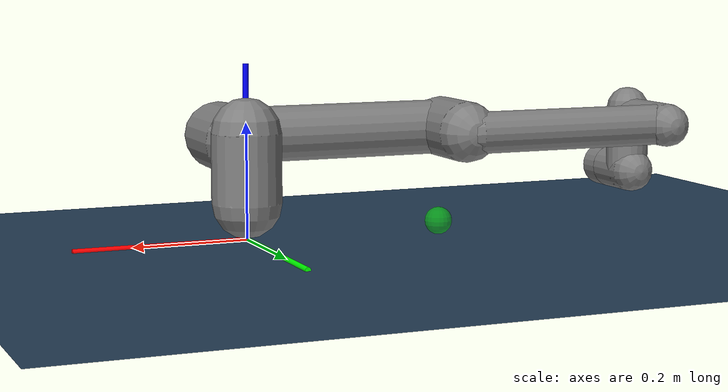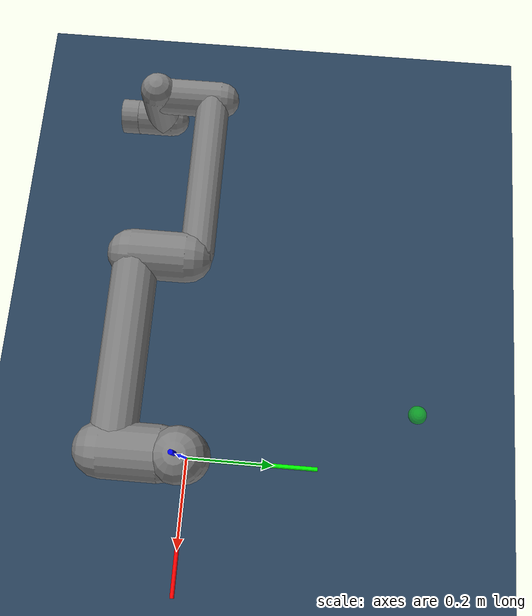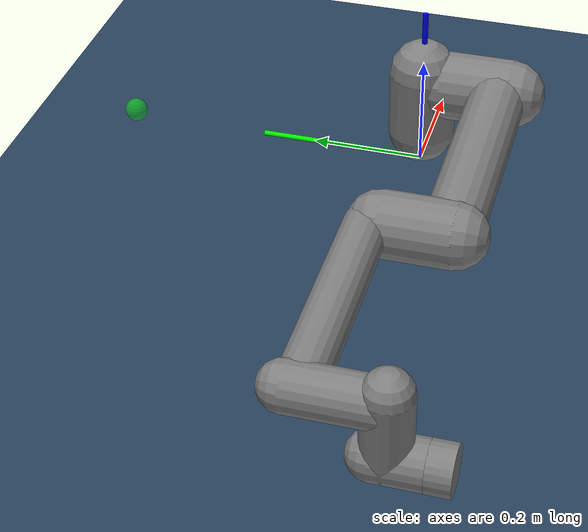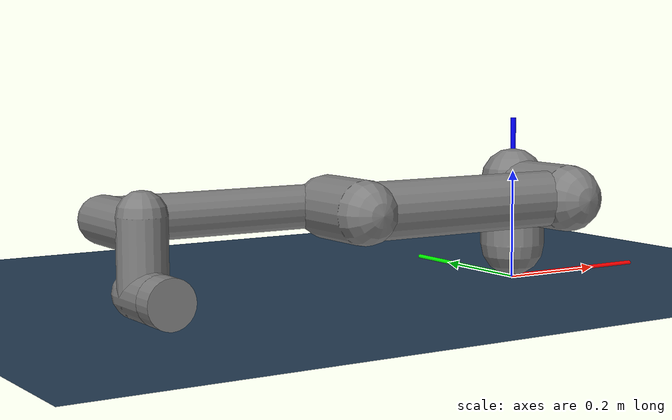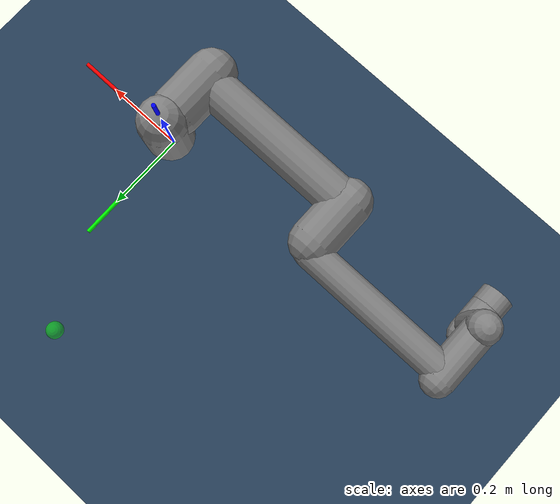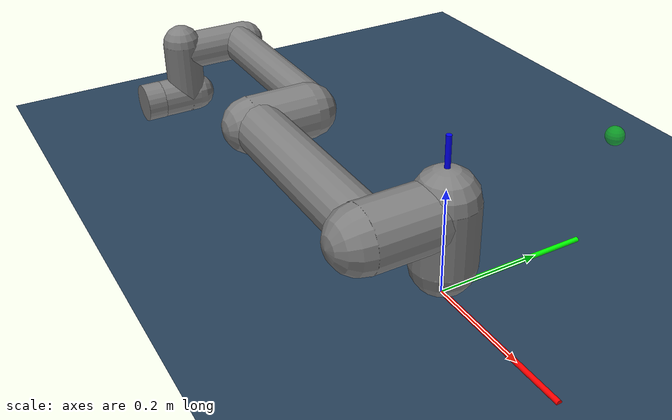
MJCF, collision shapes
<mujoco model="ur5e scene">
  <compiler angle="radian" meshdir="assets/"/>
  <option integrator="implicitfast"/>
  <size nkey="1"/>
  <visual>
    <global azimuth="120" elevation="-20"/>
    <headlight diffuse="0.6 0.6 0.6" specular="0 0 0"/>
    <rgba haze="0.15 0.25 0.35 1"/>
  </visual>
  <statistic extent="0.8" center="0.3 0 0.4"/>
  <default class="main">
    <default class="ur5e">
      <material shininess="0.25"/>
      <joint range="-6.28319 6.28319" armature="0.1"/>
      <site size="0.001 0.005 0.005" group="4" rgba="0.5 0.5 0.5 0.3"/>
      <general ctrlrange="-6.2831 6.2831" forcerange="-150 150" biastype="affine" gainprm="2000" biasprm="0 -2000 -400"/>
      <default class="size3">
        <default class="size3_limited">
          <joint range="-3.1415 3.1415"/>
          <general ctrlrange="-3.1415 3.1415"/>
        </default>
      </default>
      <default class="size1">
        <general forcerange="-28 28" gainprm="500" biasprm="0 -500 -100"/>
      </default>
      <default class="visual">
        <geom type="mesh" contype="0" conaffinity="0" group="2"/>
      </default>
      <default class="collision">
        <geom type="capsule" group="3"/>
        <default class="eef_collision">
          <geom type="cylinder"/>
        </default>
      </default>
    </default>
  </default>
  <asset>
    <texture type="skybox" builtin="gradient" rgb1="0.3 0.5 0.7" rgb2="0 0 0" width="512" height="3072"/>
    <texture type="2d" name="groundplane" builtin="checker" mark="edge" rgb1="0.2 0.3 0.4" rgb2="0.1 0.2 0.3" markrgb="0.8 0.8 0.8" width="300" height="300"/>
    <material name="black" class="ur5e" rgba="0.033 0.033 0.033 1"/>
    <material name="jointgray" class="ur5e" rgba="0.278 0.278 0.278 1"/>
    <material name="linkgray" class="ur5e" rgba="0.82 0.82 0.82 1"/>
    <material name="urblue" class="ur5e" rgba="0.49 0.678 0.8 1"/>
    <material name="groundplane" texture="groundplane" texuniform="true" texrepeat="5 5" reflectance="0.2"/>
    <mesh name="base_0" file="base_0.obj"/>
    <mesh name="base_1" file="base_1.obj"/>
    <mesh name="shoulder_0" file="shoulder_0.obj"/>
    <mesh name="shoulder_1" file="shoulder_1.obj"/>
    <mesh name="shoulder_2" file="shoulder_2.obj"/>
    <mesh name="upperarm_0" file="upperarm_0.obj"/>
    <mesh name="upperarm_1" file="upperarm_1.obj"/>
    <mesh name="upperarm_2" file="upperarm_2.obj"/>
    <mesh name="upperarm_3" file="upperarm_3.obj"/>
    <mesh name="forearm_0" file="forearm_0.obj"/>
    <mesh name="forearm_1" file="forearm_1.obj"/>
    <mesh name="forearm_2" file="forearm_2.obj"/>
    <mesh name="forearm_3" file="forearm_3.obj"/>
    <mesh name="wrist1_0" file="wrist1_0.obj"/>
    <mesh name="wrist1_1" file="wrist1_1.obj"/>
    <mesh name="wrist1_2" file="wrist1_2.obj"/>
    <mesh name="wrist2_0" file="wrist2_0.obj"/>
    <mesh name="wrist2_1" file="wrist2_1.obj"/>
    <mesh name="wrist2_2" file="wrist2_2.obj"/>
    <mesh name="wrist3" file="wrist3.obj"/>
  </asset>
  <worldbody>
    <geom name="floor" size="0 0 0.05" type="plane" material="groundplane"/>
    <light name="spotlight" target="wrist_2_link" pos="0 -1 2" dir="0 0 -1" mode="targetbodycom"/>
    <light pos="0 0 1.5" dir="0 0 -1" directional="true"/>
    <body name="base" childclass="ur5e" quat="0 0 0 -1">
      <inertial pos="0 0 0" mass="4" diaginertia="0.00443333 0.00443333 0.0072"/>
      <geom class="visual" material="black" mesh="base_0"/>
      <geom class="visual" material="jointgray" mesh="base_1"/>
      <body name="shoulder_link" pos="0 0 0.163">
        <inertial pos="0 0 0" mass="3.7" diaginertia="0.0102675 0.0102675 0.00666"/>
        <joint name="shoulder_pan_joint" class="size3" pos="0 0 0" axis="0 0 1"/>
        <geom class="visual" material="urblue" mesh="shoulder_0"/>
        <geom class="visual" material="black" mesh="shoulder_1"/>
        <geom class="visual" material="jointgray" mesh="shoulder_2"/>
        <geom class="collision" size="0.06 0.06" pos="0 0 -0.04"/>
        <body name="upper_arm_link" pos="0 0.138 0" quat="0.707107 0 0.707107 0">
          <inertial pos="0 0 0.2125" mass="8.393" diaginertia="0.133886 0.133886 0.0151074"/>
          <joint name="shoulder_lift_joint" class="size3" pos="0 0 0" axis="0 1 0"/>
          <geom class="visual" material="linkgray" mesh="upperarm_0"/>
          <geom class="visual" material="black" mesh="upperarm_1"/>
          <geom class="visual" material="jointgray" mesh="upperarm_2"/>
          <geom class="visual" material="urblue" mesh="upperarm_3"/>
          <geom class="collision" size="0.06 0.06" pos="0 -0.04 0" quat="0.707107 0.707107 0 0"/>
          <geom class="collision" size="0.05 0.2" pos="0 0 0.2"/>
          <body name="forearm_link" pos="0 -0.131 0.425">
            <inertial pos="0 0 0.196" mass="2.275" diaginertia="0.0311796 0.0311796 0.004095"/>
            <joint name="elbow_joint" class="size3_limited" pos="0 0 0" axis="0 1 0"/>
            <geom class="visual" material="urblue" mesh="forearm_0"/>
            <geom class="visual" material="linkgray" mesh="forearm_1"/>
            <geom class="visual" material="black" mesh="forearm_2"/>
            <geom class="visual" material="jointgray" mesh="forearm_3"/>
            <geom class="collision" size="0.055 0.06" pos="0 0.08 0" quat="0.707107 0.707107 0 0"/>
            <geom class="collision" size="0.038 0.19" pos="0 0 0.2"/>
            <body name="wrist_1_link" pos="0 0 0.392" quat="0.707107 0 0.707107 0">
              <inertial pos="0 0.127 0" mass="1.219" diaginertia="0.0025599 0.0025599 0.0021942"/>
              <joint name="wrist_1_joint" class="size1" pos="0 0 0" axis="0 1 0"/>
              <geom class="visual" material="black" mesh="wrist1_0"/>
              <geom class="visual" material="urblue" mesh="wrist1_1"/>
              <geom class="visual" material="jointgray" mesh="wrist1_2"/>
              <geom class="collision" size="0.04 0.07" pos="0 0.05 0" quat="0.707107 0.707107 0 0"/>
              <body name="wrist_2_link" pos="0 0.127 0">
                <inertial pos="0 0 0.1" mass="1.219" diaginertia="0.0025599 0.0025599 0.0021942"/>
                <joint name="wrist_2_joint" class="size1" pos="0 0 0" axis="0 0 1"/>
                <geom class="visual" material="black" mesh="wrist2_0"/>
                <geom class="visual" material="urblue" mesh="wrist2_1"/>
                <geom class="visual" material="jointgray" mesh="wrist2_2"/>
                <geom class="collision" size="0.04 0.06" pos="0 0 0.04"/>
                <geom class="collision" size="0.04 0.04" pos="0 0.02 0.1" quat="0.707107 0.707107 0 0"/>
                <body name="wrist_3_link" pos="0 0 0.1">
                  <inertial pos="0 0.0771683 0" quat="0.707107 0 0 0.707107" mass="0.1889" diaginertia="0.000132134 9.90863e-05 9.90863e-05"/>
                  <joint name="wrist_3_joint" class="size1" pos="0 0 0" axis="0 1 0"/>
                  <geom class="visual" material="linkgray" mesh="wrist3"/>
                  <geom class="eef_collision" size="0.04 0.02" pos="0 0.08 0" quat="0.707107 0.707107 0 0"/>
                  <site name="attachment_site" pos="0 0.1 0" quat="-0.707107 0.707107 0 0"/>
                </body>
              </body>
            </body>
          </body>
        </body>
      </body>
    </body>
    <body name="world_frame">
      <geom name="X" size="0.005 0.15" pos="0.15 0 0" quat="0.707107 0 -0.707107 0" type="cylinder" contype="0" conaffinity="0" rgba="1 0 0 1"/>
      <geom name="Y" size="0.005 0.15" pos="0 0.15 0" quat="0.707107 0.707107 0 0" type="cylinder" contype="0" conaffinity="0" rgba="0 1 0 1"/>
      <geom name="Z" size="0.005 0.15" pos="0 0 0.15" quat="0 1 0 0" type="cylinder" contype="0" conaffinity="0" rgba="0 0 1 1"/>
    </body>
    <body name="target" pos="-0.13 0.5 0.1">
      <geom size="0.02" contype="0" conaffinity="0" rgba="0 1 0 0.5"/>
    </body>
  </worldbody>
  <actuator>
    <general name="shoulder_pan" class="size3" joint="shoulder_pan_joint"/>
    <general name="shoulder_lift" class="size3" joint="shoulder_lift_joint"/>
    <general name="elbow" class="size3_limited" joint="elbow_joint"/>
    <general name="wrist_1" class="size1" joint="wrist_1_joint"/>
    <general name="wrist_2" class="size1" joint="wrist_2_joint"/>
    <general name="wrist_3" class="size1" joint="wrist_3_joint"/>
  </actuator>
  <keyframe>
    <key name="home" qpos="-1.5708 -1.5708 1.5708 -1.5708 -1.5708 0" ctrl="-1.5708 -1.5708 1.5708 -1.5708 -1.5708 0"/>
  </keyframe>
</mujoco>
